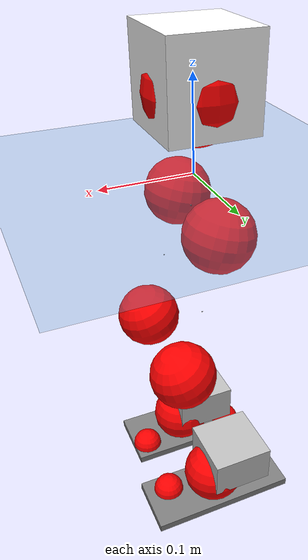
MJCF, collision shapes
<mujoco model="pi_12dof_release_v1">
  <compiler angle="radian" assetdir="assets" balanceinertia="true" inertiafromgeom="false"/>

  <option timestep="0.005" density="1.2" viscosity="2e-05"/>

  <size nkey="1"/>

  <visual>
    <quality shadowsize="8192"/>
    <map shadowclip="0.5"/>
  </visual>

  <default>
    <default class="/">
      <joint armature="0.01" damping="0.01" frictionloss="0.01"/>
      <geom contype="0" conaffinity="0" group="1" solref="-1000 -80"/>
      <site size="0.01 0.005 0.005" group="5"/>
      <general forcelimited="true" biastype="affine" gainprm="20" biasprm="0 -20 -0.5"/>
      <default class="foot">
        <geom size="0.0845 0.036 0.005" type="box" condim="6" group="4" priority="1" friction="0.9 0.2 0.2" solimp="0.015 1 0.005"/>
      </default>
      <default class="reward_collision_sphere">
        <geom group="5" rgba="1 0 0 1"/>
      </default>
    </default>
  </default>

  <asset>
    <texture type="skybox" colorspace="auto" name="//unnamed_texture_0" builtin="gradient" rgb1="0.95 0.95 0.95" rgb2="0.95 0.95 0.95" width="100" height="600"/>
    <texture type="2d" colorspace="auto" name="texplane" builtin="checker" rgb1="0.345 0.575 0.748" rgb2="0.345 0.575 0.748" markrgb="1 1 1" width="512" height="512"/>
    <material name="MatPlane" class="/" texture="texplane" texuniform="true" texrepeat="2 2" specular="0.9"/>
    <mesh name="baselink_1" class="/" file="baselink_1.STL"/>
    <mesh name="r_hip_pitch_link" class="/" file="r_hip_pitch_link.STL"/>
    <mesh name="r_hip_roll_link" class="/" file="r_hip_roll_link.STL"/>
    <mesh name="r_thigh_link" class="/" file="r_thigh_link.STL"/>
    <mesh name="r_calf_link" class="/" file="r_calf_link.STL"/>
    <mesh name="r_ankle_pitch_link" class="/" file="r_ankle_pitch_link.STL"/>
    <mesh name="r_ankle_roll_link" class="/" file="r_ankle_roll_link.STL"/>
    <mesh name="l_hip_pitch_link" class="/" file="l_hip_pitch_link.STL"/>
    <mesh name="l_hip_roll_link" class="/" file="l_hip_roll_link.STL"/>
    <mesh name="l_thigh_link" class="/" file="l_thigh_link.STL"/>
    <mesh name="l_calf_link" class="/" file="l_calf_link.STL"/>
    <mesh name="l_ankle_pitch_link" class="/" file="l_ankle_pitch_link.STL"/>
    <mesh name="l_ankle_roll_link" class="/" file="l_ankle_roll_link.STL"/>
  </asset>

  <worldbody>
    <geom name="floor" class="/" size="100 100 0.125" type="plane" group="0" material="MatPlane"/>
    <light name="toplight_shadow" class="/" pos="0 0 5" dir="0.0990148 0.0990148 -0.990148" type="directional" ambient="0.04 0.04 0.04" diffuse="0.55 0.55 0.55" specular="0.12 0.12 0.12"/>
    <light name="toplight_fill" class="/" pos="0 0 5" dir="0.0990148 0.0990148 -0.990148" type="directional" castshadow="false" ambient="0.04 0.04 0.04" diffuse="0.3 0.3 0.3" specular="0.08 0.08 0.08"/>
    <body name="trunk" pos="-0.00269546 -0.000466412 -0.00271093" quat="0.999999 -0.000252935 -0.00127462 0.000557015">
      <inertial pos="-0.000677374 0.00206893 0.0476493" quat="0.69596 0.0100468 -0.00200737 0.718007" mass="1.87989" diaginertia="0.00576433 0.00211283 0.0112009"/>
      <joint name="//unnamed_joint_0" type="free"/>
      <geom name="//unnamed_geom_1" class="/" type="mesh" density="0" rgba="1 1 1 1" mesh="baselink_1"/>
      <geom name="//unnamed_geom_2" class="/" size="0.0476623 0.0476623 0.0476623" pos="0 0 0.0972499" type="box" rgba="1 1 1 1"/>
      <geom name="//unnamed_geom_3" class="reward_collision_sphere" size="0.0524286" pos="0 0 0.0850937"/>
      <site name="imu" class="/" pos="0.0140278 -0.0013446 -0.00993822" size="0.00953246"/>
      <camera name="track" class="/" pos="0 -1.49593 0" quat="0.707107 0.707107 0 0" mode="trackcom"/>
      <camera name="ego_camera" class="/" pos="0.0672111 0 0.218812" quat="-0.5 -0.5 0.5 0.5"/>
      <body name="r_hip_pitch_link" pos="-0.00182043 -0.0175437 -0.040825" quat="0.99218 -0.000135311 -0.124813 -0.000167193">
        <inertial pos="-0.00192903 -0.0415451 -0.000519526" quat="-0.0144162 0.697905 -0.0237303 0.715652" mass="0.325211" diaginertia="6.39095e-05 2.34903e-05 0.000231852"/>
        <joint name="r_hip_pitch_joint" class="/" pos="0 0 0" axis="-0.00380259 -0.999986 0.00355094" range="-1.75923 1.22649" armature="0.00822173" damping="0.0126666" frictionloss="0.0101361"/>
        <geom name="//unnamed_geom_4" class="/" type="mesh" density="0" rgba="0.75294 0.75294 0.75294 1" mesh="r_hip_pitch_link"/>
        <geom name="//unnamed_geom_5" class="/" size="0.000476623 0.000476623 0.000476623" type="box" rgba="0.75294 0.75294 0.75294 1"/>
        <body name="r_hip_roll_link" pos="-0.00179406 -0.0414942 4.8144e-06" quat="1 0.000154975 1.90528e-05 8.94713e-05">
          <inertial pos="-0.00156514 -0.00140085 -0.0743297" quat="0.704444 -0.0795544 -0.0890773 0.699639" mass="0.332656" diaginertia="0.000190577 6.20782e-05 0.000337533"/>
          <joint name="r_hip_roll_joint" class="/" pos="0 0 0" axis="-0.999918 -0.012824 0.000532095" range="-0.137511 0.528967" armature="0.0104865" damping="0.0019202" frictionloss="0.00871912"/>
          <geom name="//unnamed_geom_6" class="/" type="mesh" density="0" rgba="0.75294 0.75294 0.75294 1" mesh="r_hip_roll_link"/>
          <geom name="//unnamed_geom_7" class="/" size="0.000476623 0.000476623 0.000476623" type="box" rgba="0.75294 0.75294 0.75294 1"/>
          <geom name="//unnamed_geom_8" class="reward_collision_sphere" size="0.0381299"/>
          <body name="r_thigh_link" pos="-0.000339957 0.00108681 -0.081072" quat="1 0.000296533 -0.000314424 -0.000298462">
            <inertial pos="-0.000705893 -0.00214228 -0.0549525" quat="0.737835 0.67498 -0.00062907 0.000897065" mass="0.0990996" diaginertia="7.44541e-05 2.19055e-05 0.000153644"/>
            <joint name="r_thigh_joint" class="/" pos="0 0 0" axis="-0.00340531 0.0155709 -0.999873" stiffness="0.00211604" range="-0.275243 0.63524" armature="0.00956135" damping="0" frictionloss="0.00942919"/>
            <geom name="//unnamed_geom_9" class="/" type="mesh" density="0" rgba="0.75294 0.75294 0.75294 1" mesh="r_thigh_link"/>
            <geom name="//unnamed_geom_10" class="/" size="0.000476623 0.000476623 0.000476623" type="box" rgba="0.75294 0.75294 0.75294 1"/>
            <body name="r_calf_link" pos="0.00307012 0.00162847 -0.0841635" quat="0.947674 -3.56643e-05 0.319239 3.49422e-05">
              <inertial pos="-0.00196639 -0.00350431 -0.0845754" quat="0.999969 -0.00285845 0.00684679 0.00269839" mass="0.711489" diaginertia="0.00199314 0.000855272 0.000470323"/>
              <joint name="r_calf_joint" class="/" pos="0 0 0" axis="0.000682708 -0.999993 0.00357832" range="-1.62022 0.654582" armature="0.00825818" damping="0.00548527" frictionloss="0.00973768"/>
              <geom name="//unnamed_geom_11" class="/" type="mesh" density="0" rgba="0.75294 0.75294 0.75294 1" mesh="r_calf_link"/>
              <geom name="//unnamed_geom_12" class="/" size="0.000476623 0.000476623 0.000476623" type="box" rgba="0.75294 0.75294 0.75294 1"/>
              <geom name="//unnamed_geom_13" class="reward_collision_sphere" size="0.0381299"/>
              <body name="r_ankle_pitch_link" pos="0.00260108 -0.000812625 -0.17207" quat="0.980161 0.000167905 -0.1982 -0.000825368">
                <inertial pos="0.00395549 0.00257727 -0.00117715" quat="0.00201809 0.707125 -0.00261341 0.707081" mass="0.157703" diaginertia="0.000174304 5.28112e-05 0.000323559"/>
                <joint name="r_ankle_pitch_joint" class="/" pos="0 0 0" axis="0.00693272 -0.999961 0.0055232" stiffness="0.00403338" range="-1.2886 0.513451" armature="0.00950927" damping="0.011682" frictionloss="0.0104508"/>
                <geom name="//unnamed_geom_14" class="/" type="mesh" density="0" rgba="0.75294 0.75294 0.75294 1" mesh="r_ankle_pitch_link"/>
                <geom name="//unnamed_geom_15" class="/" size="0.0371766 0.0381299 0.0238312" type="box" rgba="0.75294 0.75294 0.75294 1"/>
                <body name="r_ankle_roll_link" pos="0.069427 0.00314505 7.47185e-05" quat="1 -6.44725e-05 -0.000395739 0.000131521">
                  <inertial pos="-0.0213186 -0.00106221 -0.0175589" quat="0.555221 0.427356 0.428581 0.570451" mass="0.435125" diaginertia="0.000672814 0.000242523 0.00073655"/>
                  <joint name="r_ankle_roll_joint" class="/" pos="0 0 0" axis="-0.999967 0.00039469 0.00806684" range="-0.094383 0.112827" armature="0.00891601" damping="0.0185568" frictionloss="0.00819646"/>
                  <geom name="//unnamed_geom_16" class="/" type="mesh" density="0" rgba="0.75294 0.75294 0.75294 1" mesh="r_ankle_roll_link"/>
                  <geom name="//unnamed_geom_17" class="/" type="mesh" rgba="0.75294 0.75294 0.75294 1" mesh="r_ankle_roll_link"/>
                  <geom name="right_foot" class="foot" size="0.0776091 0.0387228 0.00460549" pos="-0.0457036 0 -0.0534874"/>
                  <geom name="//unnamed_geom_19" class="reward_collision_sphere" size="0.0381299" pos="-0.0448074 0 -0.0243125"/>
                  <geom name="//unnamed_geom_20" class="reward_collision_sphere" size="0.0190649" pos="0.0134422 0.0149593 -0.048625"/>
                  <geom name="//unnamed_geom_21" class="reward_collision_sphere" size="0.0190649" pos="-0.107538 0.0149593 -0.048625"/>
                  <site name="right_foot" class="foot" pos="-0.0457036 0 -0.0534874" size="0.00953246"/>
                </body>
              </body>
            </body>
          </body>
        </body>
      </body>
      <body name="l_hip_pitch_link" pos="-0.000560677 0.0147637 -0.0413059" quat="0.992199 8.1124e-06 -0.124663 -5.67246e-06">
        <inertial pos="0.0013045 0.0412725 -0.00182275" quat="-0.0385764 0.705959 0.0266692 0.706698" mass="0.347209" diaginertia="7.66895e-05 2.39646e-05 0.000266332"/>
        <joint name="l_hip_pitch_joint" class="/" pos="0 0 0" axis="0.011855 0.999929 -0.000824326" range="-1.19482 1.73026" armature="0.0108278" damping="0.00609475" frictionloss="0.00970158"/>
        <geom name="//unnamed_geom_22" class="/" type="mesh" density="0" rgba="0.75294 0.75294 0.75294 1" mesh="l_hip_pitch_link"/>
        <geom name="//unnamed_geom_23" class="/" size="0.000476623 0.000476623 0.000476623" type="box" rgba="0.75294 0.75294 0.75294 1"/>
        <body name="l_hip_roll_link" pos="0.000111304 0.0408677 -0.000530086" quat="1 3.53602e-05 0.000533715 0.000159693">
          <inertial pos="-0.00330354 0.000145801 -0.0742405" quat="0.704378 -0.0708638 -0.0798735 0.701748" mass="0.346297" diaginertia="0.000195221 6.6397e-05 0.000344428"/>
          <joint name="l_hip_roll_joint" class="/" pos="0 0 0" axis="-0.999998 0.00126907 0.00130833" stiffness="0.00711524" range="-0.524218 0.165214" armature="0.00825867" damping="0.00605576" frictionloss="0.00949896"/>
          <geom name="//unnamed_geom_24" class="/" type="mesh" density="0" rgba="0.75294 0.75294 0.75294 1" mesh="l_hip_roll_link"/>
          <geom name="//unnamed_geom_25" class="/" size="0.000476623 0.000476623 0.000476623" type="box" rgba="0.75294 0.75294 0.75294 1"/>
          <geom name="//unnamed_geom_26" class="reward_collision_sphere" size="0.0381299"/>
          <body name="l_thigh_link" pos="-0.0027346 0.00208657 -0.0870337" quat="1 -0.000216266 -0.00019192 0.000257378">
            <inertial pos="0.00297885 -0.00416259 -0.0549344" quat="0.678709 0.734327 0.00828769 0.00699586" mass="0.095082" diaginertia="7.23417e-05 2.29361e-05 0.000151125"/>
            <joint name="l_thigh_joint" class="/" pos="0 0 0" axis="0.000224856 0.00147277 -0.999999" range="-0.596216 0.243807" armature="0.00946166" damping="0.0043772" frictionloss="0.00985728"/>
            <geom name="//unnamed_geom_27" class="/" type="mesh" density="0" rgba="0.75294 0.75294 0.75294 1" mesh="l_thigh_link"/>
            <geom name="//unnamed_geom_28" class="/" size="0.000476623 0.000476623 0.000476623" type="box" rgba="0.75294 0.75294 0.75294 1"/>
            <body name="l_calf_link" pos="0.00186643 -0.00103687 -0.0852174" quat="0.947826 0.000566277 0.318789 -7.79436e-05">
              <inertial pos="0.000559967 0.00422427 -0.0877182" quat="0.999984 0.00326961 0.000382004 0.00456508" mass="0.72037" diaginertia="0.00202094 0.000810376 0.000457642"/>
              <joint name="l_calf_joint" class="/" pos="0 0 0" axis="-0.000641677 0.999995 -0.0032479" range="-0.63955 1.6838" armature="0.00960399" damping="0.00689553" frictionloss="0.010393"/>
              <geom name="//unnamed_geom_29" class="/" type="mesh" density="0" rgba="0.75294 0.75294 0.75294 1" mesh="l_calf_link"/>
              <geom name="//unnamed_geom_30" class="/" size="0.000476623 0.000476623 0.000476623" type="box" rgba="0.75294 0.75294 0.75294 1"/>
              <geom name="//unnamed_geom_31" class="reward_collision_sphere" size="0.0381299"/>
              <body name="l_ankle_pitch_link" pos="0.00188945 0.000951853 -0.16928" quat="0.98005 0.000104627 -0.19875 6.24016e-05">
                <inertial pos="0.00146533 0.00204475 -0.000171536" quat="-0.0024321 0.707147 0.00185655 0.70706" mass="0.143919" diaginertia="0.000178343 5.10631e-05 0.000318061"/>
                <joint name="l_ankle_pitch_joint" class="/" pos="0 0 0" axis="-0.00119936 0.999999 0.000745288" range="-0.535814 1.30525" armature="0.00849151" damping="0.009914" frictionloss="0.00980565"/>
                <geom name="//unnamed_geom_32" class="/" type="mesh" density="0" rgba="0.75294 0.75294 0.75294 1" mesh="l_ankle_pitch_link"/>
                <geom name="//unnamed_geom_33" class="/" size="0.0371766 0.0381299 0.0238312" type="box" rgba="0.75294 0.75294 0.75294 1"/>
                <body name="l_ankle_roll_link" pos="0.0686975 0.000809474 0.00125261" quat="1 -1.82568e-05 6.51357e-05 -6.20188e-05">
                  <inertial pos="-0.0205772 -0.000685607 -0.0181497" quat="0.559985 0.432088 0.433323 0.558523" mass="0.419707" diaginertia="0.000627741 0.000235946 0.00071642"/>
                  <joint name="l_ankle_roll_joint" class="/" pos="0 0 0" axis="-0.999986 0.0017033 0.00502408" range="-0.123169 0.151409" armature="0.0108023" damping="0.0140537" frictionloss="0.00959935"/>
                  <geom name="//unnamed_geom_34" class="/" type="mesh" density="0" rgba="0.75294 0.75294 0.75294 1" mesh="l_ankle_roll_link"/>
                  <geom name="//unnamed_geom_35" class="/" type="mesh" rgba="0.75294 0.75294 0.75294 1" mesh="l_ankle_roll_link"/>
                  <geom name="left_foot" class="foot" size="0.0901846 0.0359766 0.00483447" pos="-0.0457036 0 -0.0534874"/>
                  <geom name="//unnamed_geom_37" class="reward_collision_sphere" size="0.0381299" pos="-0.0448074 0 -0.0243125"/>
                  <geom name="//unnamed_geom_38" class="reward_collision_sphere" size="0.0190649" pos="0.0134422 -0.0149593 -0.048625"/>
                  <geom name="//unnamed_geom_39" class="reward_collision_sphere" size="0.0190649" pos="-0.107538 -0.0149593 -0.048625"/>
                  <site name="left_foot" class="foot" pos="-0.0457036 0 -0.0534874" size="0.00953246"/>
                </body>
              </body>
            </body>
          </body>
        </body>
      </body>
    </body>
  </worldbody>

  <contact>
    <pair class="/" geom1="floor" geom2="right_foot" name="//unnamed_contact_1"/>
    <pair class="/" geom1="floor" geom2="left_foot" name="//unnamed_contact_0"/>
  </contact>

  <actuator>
    <general name="r_hip_pitch_joint" class="/" joint="r_hip_pitch_joint" forcerange="-19.9047 19.9047" gainprm="19.0911" biasprm="0 -19.0911 -0.447194"/>
    <general name="r_hip_roll_joint" class="/" joint="r_hip_roll_joint" forcerange="-18.6807 18.6807" gainprm="19.0911" biasprm="0 -19.0911 -0.447194"/>
    <general name="r_thigh_joint" class="/" joint="r_thigh_joint" forcerange="-22.1654 22.1654" gainprm="19.0911" biasprm="0 -19.0911 -0.447194"/>
    <general name="r_calf_joint" class="/" joint="r_calf_joint" forcerange="-18.6979 18.6979" gainprm="19.0911" biasprm="0 -19.0911 -0.447194"/>
    <general name="r_ankle_pitch_joint" class="/" joint="r_ankle_pitch_joint" forcerange="-21.4988 21.4988" gainprm="19.0911" biasprm="0 -19.0911 -0.447194"/>
    <general name="r_ankle_roll_joint" class="/" joint="r_ankle_roll_joint" forcerange="-22.0789 22.0789" gainprm="19.0911" biasprm="0 -19.0911 -0.447194"/>
    <general name="l_hip_pitch_joint" class="/" joint="l_hip_pitch_joint" forcerange="-20.1598 20.1598" gainprm="19.0911" biasprm="0 -19.0911 -0.447194"/>
    <general name="l_hip_roll_joint" class="/" joint="l_hip_roll_joint" forcerange="-21.6013 21.6013" gainprm="19.0911" biasprm="0 -19.0911 -0.447194"/>
    <general name="l_thigh_joint" class="/" joint="l_thigh_joint" forcerange="-18.8485 18.8485" gainprm="19.0911" biasprm="0 -19.0911 -0.447194"/>
    <general name="l_calf_joint" class="/" joint="l_calf_joint" forcerange="-19.2488 19.2488" gainprm="19.0911" biasprm="0 -19.0911 -0.447194"/>
    <general name="l_ankle_pitch_joint" class="/" joint="l_ankle_pitch_joint" forcerange="-22.1183 22.1183" gainprm="19.0911" biasprm="0 -19.0911 -0.447194"/>
    <general name="l_ankle_roll_joint" class="/" joint="l_ankle_roll_joint" forcerange="-20.0269 20.0269" gainprm="19.0911" biasprm="0 -19.0911 -0.447194"/>
  </actuator>

  <sensor>
    <gyro site="imu" name="imu_angular_velocity"/>
    <velocimeter site="imu" name="imu_linear_velocity"/>
    <framelinvel objtype="site" objname="left_foot" name="left_foot_global_linear_velocity"/>
    <framelinvel objtype="site" objname="right_foot" name="right_foot_global_linear_velocity"/>
  </sensor>

  <keyframe>
    <key name="home" qpos="0 0 0.291 1 0 0 0 0.4 0 0 -0.8 0.4 0 -0.4 0 0 0.8 -0.4 0"/>
  </keyframe>
</mujoco>
